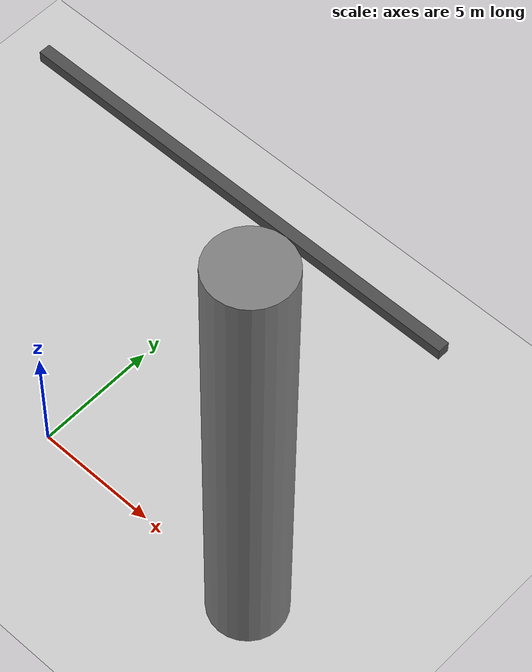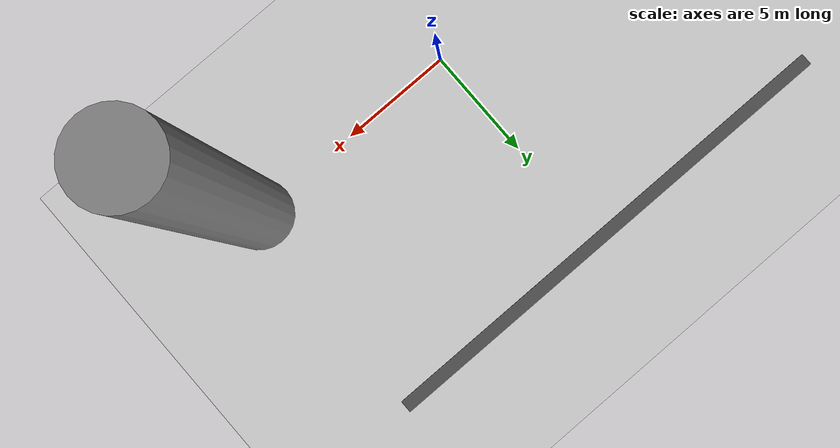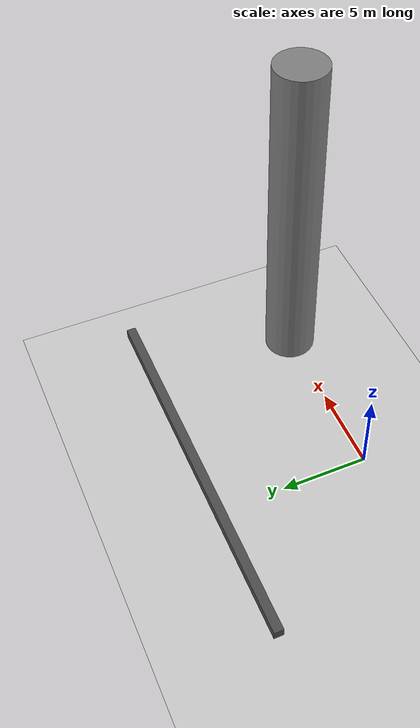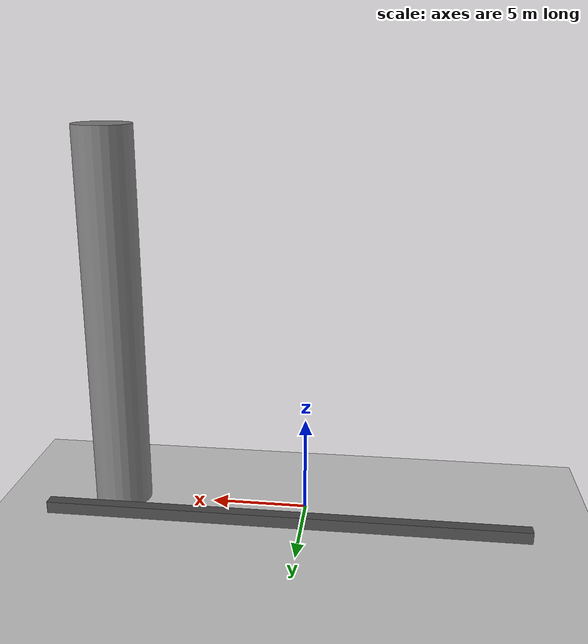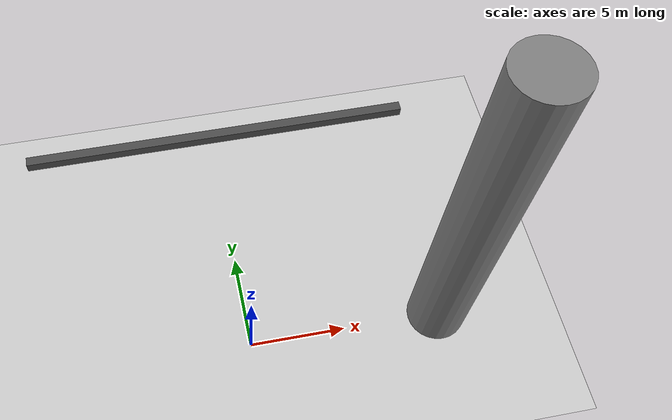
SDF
<?xml version="1.0" ?>
<sdf version="1.8">
  <world name="chemical_plant_hazard">
    <physics name="1ms" type="ignored">
      <max_step_size>0.001</max_step_size>
      <real_time_factor>1.0</real_time_factor>
    </physics>
    <plugin name="gz::sim::systems::Physics" filename="gz-sim-physics-system"/>
    <plugin name="gz::sim::systems::UserCommands" filename="gz-sim-user-commands-system"/>
    <plugin name="gz::sim::systems::SceneBroadcaster" filename="gz-sim-scene-broadcaster-system"/>
    <plugin name="gz::sim::systems::Sensors" filename="gz-sim-sensors-system">
      <render_engine>ogre2</render_engine>
    </plugin>

    <light type="directional" name="sun">
      <cast_shadows>true</cast_shadows>
      <pose>0 0 10 0 0 0</pose>
      <diffuse>0.8 0.8 0.8 1</diffuse>
      <specular>0.2 0.2 0.2 1</specular>
    </light>

    <model name="ground_plane">
      <static>true</static>
      <link name="link">
        <visual name="visual">
          <geometry><plane><normal>0 0 1</normal><size>100 100</size></plane></geometry>
          <material><ambient>0.8 0.8 0.8 1</ambient><diffuse>0.8 0.8 0.8 1</diffuse></material>
        </visual>
      </link>
    </model>

    <!-- Distillation Column -->
    <model name="distillation_column">
      <static>true</static>
      <pose>10 0 10 0 0 0</pose>
      <link name="link">
        <visual name="column_visual">
          <geometry><cylinder><radius>1.5</radius><length>20</length></cylinder></geometry>
          <material><ambient>0.5 0.5 0.5 1</ambient><diffuse>0.5 0.5 0.5 1</diffuse></material>
        </visual>
        <collision name="column_collision">
          <geometry><cylinder><radius>1.5</radius><length>20</length></cylinder></geometry>
        </collision>
      </link>
    </model>

    <!-- Pipe Rack with Leak Plugin -->
    <model name="pipe_rack">
      <static>true</static>
      <pose>0 10 5 0 0 0</pose>
      <link name="link">
        <visual name="rack_visual">
          <geometry><box><size>20 0.5 0.5</size></box></geometry>
          <material>
            <ambient>0.3 0.3 0.3 1</ambient>
            <diffuse>0.3 0.3 0.3 1</diffuse>
          </material>
        </visual>

        <!-- Particle Emitter for Gas Leak -->
        <particle_emitter name="gas_leak_emitter" type="box">
          <pose>0 0 0.5 0 0 0</pose>
          <size>1 1 1</size>
          <rate>50</rate>
          <duration>0</duration>
          <emitting>false</emitting>
          <particle_size>0.2 0.2 0.2</particle_size>
          <lifetime>2</lifetime>
          <color_start>1 1 1 0.5</color_start>
          <color_end>0.5 0.5 0.5 0</color_end>
        </particle_emitter>
      </link>

      <plugin name="vectorsense::GasLeakPlugin" filename="libGasLeakPlugin.so">
        <leak_time>10.0</leak_time>
        <emitter_name>gas_leak_emitter</emitter_name>
      </plugin>
    </model>
  </world>
</sdf>
